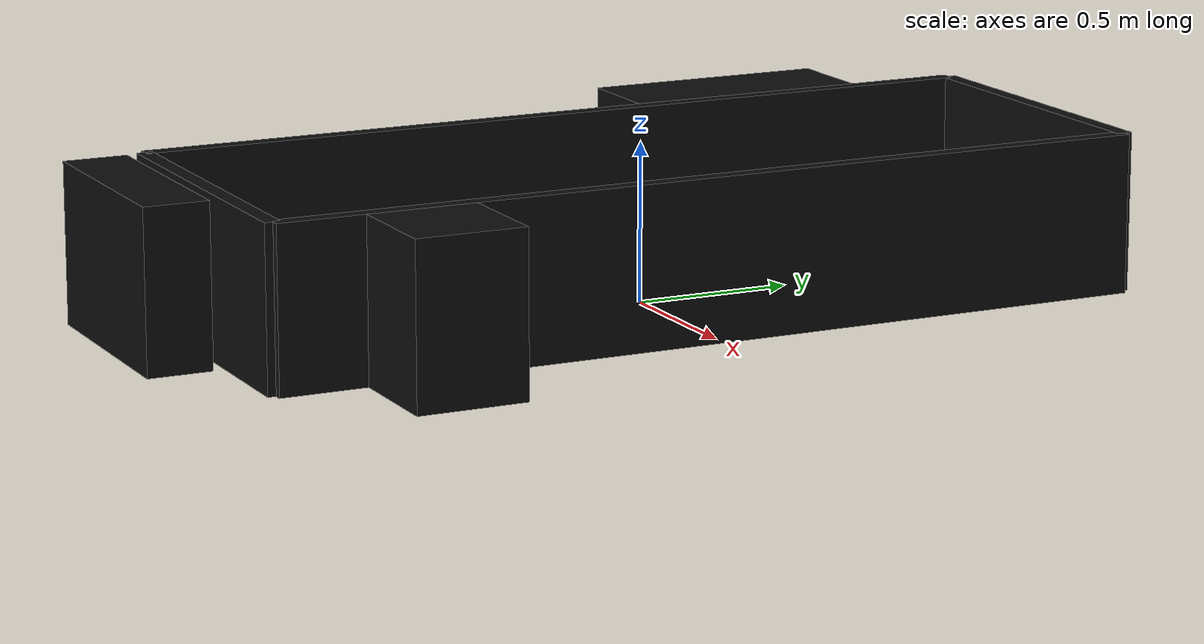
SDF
<?xml version="1.0"?>
<sdf version="1.6">
  <model name="warehouse_lidar_blocker_short_b">
    <static>true</static>
    <link name="link">
      <collision name="x_min_lidar_rail_collision">
        <pose>-0.525 0 0.25 0 0 0</pose>
        <geometry><box><size>0.05 2.80 0.50</size></box></geometry>
      </collision>
      <collision name="x_max_lidar_rail_collision">
        <pose>0.525 0 0.25 0 0 0</pose>
        <geometry><box><size>0.05 2.80 0.50</size></box></geometry>
      </collision>
      <collision name="y_min_lidar_rail_collision">
        <pose>0 -1.40 0.25 0 0 0</pose>
        <geometry><box><size>1.05 0.05 0.50</size></box></geometry>
      </collision>
      <collision name="y_max_lidar_rail_collision">
        <pose>0 1.40 0.25 0 0 0</pose>
        <geometry><box><size>1.05 0.05 0.50</size></box></geometry>
      </collision>
      <collision name="west_marker_collision">
        <pose>-0.70 0.66 0.25 0 0 0</pose>
        <geometry><box><size>0.30 0.78 0.50</size></box></geometry>
      </collision>
      <collision name="south_marker_collision">
        <pose>-0.16 -1.56 0.25 0 0 0</pose>
        <geometry><box><size>0.70 0.20 0.50</size></box></geometry>
      </collision>
      <collision name="east_marker_collision">
        <pose>0.72 -0.96 0.25 0 0 0</pose>
        <geometry><box><size>0.34 0.34 0.50</size></box></geometry>
      </collision>
      <visual name="x_min_lidar_rail">
        <pose>-0.525 0 0.25 0 0 0</pose>
        <cast_shadows>false</cast_shadows>
        <geometry><box><size>0.05 2.80 0.50</size></box></geometry>
        <material><ambient>0.03 0.03 0.03 1</ambient><diffuse>0.05 0.05 0.05 1</diffuse></material>
      </visual>
      <visual name="x_max_lidar_rail">
        <pose>0.525 0 0.25 0 0 0</pose>
        <cast_shadows>false</cast_shadows>
        <geometry><box><size>0.05 2.80 0.50</size></box></geometry>
        <material><ambient>0.03 0.03 0.03 1</ambient><diffuse>0.05 0.05 0.05 1</diffuse></material>
      </visual>
      <visual name="y_min_lidar_rail">
        <pose>0 -1.40 0.25 0 0 0</pose>
        <cast_shadows>false</cast_shadows>
        <geometry><box><size>1.05 0.05 0.50</size></box></geometry>
        <material><ambient>0.03 0.03 0.03 1</ambient><diffuse>0.05 0.05 0.05 1</diffuse></material>
      </visual>
      <visual name="y_max_lidar_rail">
        <pose>0 1.40 0.25 0 0 0</pose>
        <cast_shadows>false</cast_shadows>
        <geometry><box><size>1.05 0.05 0.50</size></box></geometry>
        <material><ambient>0.03 0.03 0.03 1</ambient><diffuse>0.05 0.05 0.05 1</diffuse></material>
      </visual>
      <visual name="west_marker">
        <pose>-0.70 0.66 0.25 0 0 0</pose>
        <cast_shadows>false</cast_shadows>
        <geometry><box><size>0.30 0.78 0.50</size></box></geometry>
        <material><ambient>0.03 0.03 0.03 1</ambient><diffuse>0.05 0.05 0.05 1</diffuse></material>
      </visual>
      <visual name="south_marker">
        <pose>-0.16 -1.56 0.25 0 0 0</pose>
        <cast_shadows>false</cast_shadows>
        <geometry><box><size>0.70 0.20 0.50</size></box></geometry>
        <material><ambient>0.03 0.03 0.03 1</ambient><diffuse>0.05 0.05 0.05 1</diffuse></material>
      </visual>
      <visual name="east_marker">
        <pose>0.72 -0.96 0.25 0 0 0</pose>
        <cast_shadows>false</cast_shadows>
        <geometry><box><size>0.34 0.34 0.50</size></box></geometry>
        <material><ambient>0.03 0.03 0.03 1</ambient><diffuse>0.05 0.05 0.05 1</diffuse></material>
      </visual>
    </link>
  </model>
</sdf>
